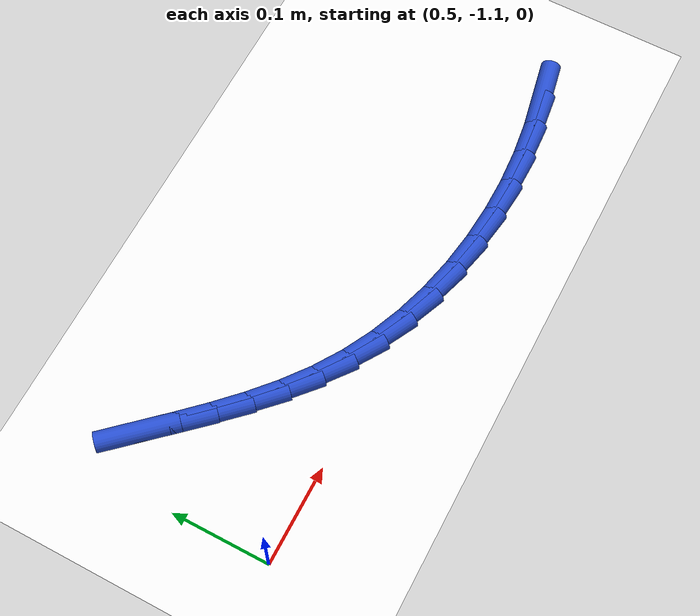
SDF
<sdf version="1.6">
 <world name="default">
  <model name="ground_plane">
   <static>1</static>
   <link name="link">
    <collision name="collision">
     <geometry><plane><normal>0 0 1</normal><size>100 100</size></plane></geometry>
     <surface><friction><ode><mu>100</mu><mu2>50</mu2></ode></friction></surface>
    </collision>
    <visual name="visual">
     <cast_shadows>0</cast_shadows>
     <geometry><plane><normal>0 0 1</normal><size>100 100</size></plane></geometry>
     <material>
      <script><uri>file://media/materials/scripts/gazebo.material</uri><name>Gazebo/WhiteGlow</name></script>
     </material>
    </visual>
   </link>
  </model>
  <model name="line">
   <link name="link_151">
    <pose>1.0423531299220818 -1.1138173822197828 0.01 0 1.57 0.1954948383418271</pose>
    <collision name="collision">
     <geometry><cylinder><radius>0.01</radius><length>0.08</length></cylinder></geometry>
    </collision>
    <visual name="visual">
     <material>
      <script><name>Gazebo/Blue</name><uri>file://media/materials/scripts/gazebo.material</uri></script>
     </material>
     <geometry><cylinder><radius>0.01</radius><length>0.08</length></cylinder></geometry>
    </visual>
   </link>
   <link name="link_152">
    <pose>1.0073821051336502 -1.120742484377155 0.01 0 1.57 0.12659611486323816</pose>
    <collision name="collision">
     <geometry><cylinder><radius>0.01</radius><length>0.08</length></cylinder></geometry>
    </collision>
    <visual name="visual">
     <material>
      <script><name>Gazebo/Blue</name><uri>file://media/materials/scripts/gazebo.material</uri></script>
     </material>
     <geometry><cylinder><radius>0.01</radius><length>0.08</length></cylinder></geometry>
    </visual>
   </link>
   <link name="link_153">
    <pose>0.9718709310468848 -1.1252622322494177 0.01 0 1.57 0.058309866842910854</pose>
    <collision name="collision">
     <geometry><cylinder><radius>0.01</radius><length>0.08</length></cylinder></geometry>
    </collision>
    <visual name="visual">
     <material>
      <script><name>Gazebo/Blue</name><uri>file://media/materials/scripts/gazebo.material</uri></script>
     </material>
     <geometry><cylinder><radius>0.01</radius><length>0.08</length></cylinder></geometry>
    </visual>
   </link>
   <link name="link_154">
    <pose>0.936086625044912 -1.1273511784048322 0.01 0 1.57 -0.010262245975007842</pose>
    <collision name="collision">
     <geometry><cylinder><radius>0.01</radius><length>0.08</length></cylinder></geometry>
    </collision>
    <visual name="visual">
     <material>
      <script><name>Gazebo/Blue</name><uri>file://media/materials/scripts/gazebo.material</uri></script>
     </material>
     <geometry><cylinder><radius>0.01</radius><length>0.08</length></cylinder></geometry>
    </visual>
   </link>
   <link name="link_155">
    <pose>0.9002962045108581 -1.1269838754116608 0.01 0 1.57 -0.08001562985274728</pose>
    <collision name="collision">
     <geometry><cylinder><radius>0.01</radius><length>0.08</length></cylinder></geometry>
    </collision>
    <visual name="visual">
     <material>
      <script><name>Gazebo/Blue</name><uri>file://media/materials/scripts/gazebo.material</uri></script>
     </material>
     <geometry><cylinder><radius>0.01</radius><length>0.08</length></cylinder></geometry>
    </visual>
   </link>
   <link name="link_156">
    <pose>0.864766686827849 -1.1241348758381646 0.01 0 1.57 -0.15184773571842655</pose>
    <collision name="collision">
     <geometry><cylinder><radius>0.01</radius><length>0.08</length></cylinder></geometry>
    </collision>
    <visual name="visual">
     <material>
      <script><name>Gazebo/Blue</name><uri>file://media/materials/scripts/gazebo.material</uri></script>
     </material>
     <geometry><cylinder><radius>0.01</radius><length>0.08</length></cylinder></geometry>
    </visual>
   </link>
   <link name="link_157">
    <pose>0.8297650893790106 -1.118778732252606 0.01 0 1.57 -0.2266570230985865</pose>
    <collision name="collision">
     <geometry><cylinder><radius>0.01</radius><length>0.08</length></cylinder></geometry>
    </collision>
    <visual name="visual">
     <material>
      <script><name>Gazebo/Blue</name><uri>file://media/materials/scripts/gazebo.material</uri></script>
     </material>
     <geometry><cylinder><radius>0.01</radius><length>0.08</length></cylinder></geometry>
    </visual>
   </link>
   <link name="link_158">
    <pose>0.7955584295474695 -1.110889997223246 0.01 0 1.57 -0.30533076583992985</pose>
    <collision name="collision">
     <geometry><cylinder><radius>0.01</radius><length>0.08</length></cylinder></geometry>
    </collision>
    <visual name="visual">
     <material>
      <script><name>Gazebo/Blue</name><uri>file://media/materials/scripts/gazebo.material</uri></script>
     </material>
     <geometry><cylinder><radius>0.01</radius><length>0.08</length></cylinder></geometry>
    </visual>
   </link>
   <link name="link_159">
    <pose>0.762413724716351 -1.100443223318347 0.01 0 1.57 -0.3887153472751042</pose>
    <collision name="collision">
     <geometry><cylinder><radius>0.01</radius><length>0.08</length></cylinder></geometry>
    </collision>
    <visual name="visual">
     <material>
      <script><name>Gazebo/Blue</name><uri>file://media/materials/scripts/gazebo.material</uri></script>
     </material>
     <geometry><cylinder><radius>0.01</radius><length>0.08</length></cylinder></geometry>
    </visual>
   </link>
   <link name="link_160">
    <pose>0.730597992268782 -1.0874129631061704 0.01 0 1.57 -0.47756184765653575</pose>
    <collision name="collision">
     <geometry><cylinder><radius>0.01</radius><length>0.08</length></cylinder></geometry>
    </collision>
    <visual name="visual">
     <material>
      <script><name>Gazebo/Blue</name><uri>file://media/materials/scripts/gazebo.material</uri></script>
     </material>
     <geometry><cylinder><radius>0.01</radius><length>0.08</length></cylinder></geometry>
    </visual>
   </link>
   <link name="link_161">
    <pose>0.700378249587888 -1.071773769154978 0.01 0 1.57 -0.571217837519205</pose>
    <collision name="collision">
     <geometry><cylinder><radius>0.01</radius><length>0.08</length></cylinder></geometry>
    </collision>
    <visual name="visual">
     <material>
      <script><name>Gazebo/Blue</name><uri>file://media/materials/scripts/gazebo.material</uri></script>
     </material>
     <geometry><cylinder><radius>0.01</radius><length>0.08</length></cylinder></geometry>
    </visual>
   </link>
   <link name="link_162">
    <pose>0.6719869539740981 -1.0535270221855486 0.01 0 1.57 -0.6566344429765998</pose>
    <collision name="collision">
     <geometry><cylinder><radius>0.01</radius><length>0.08</length></cylinder></geometry>
    </collision>
    <visual name="visual">
     <material>
      <script><name>Gazebo/Blue</name><uri>file://media/materials/scripts/gazebo.material</uri></script>
     </material>
     <geometry><cylinder><radius>0.01</radius><length>0.08</length></cylinder></geometry>
    </visual>
   </link>
   <link name="link_163">
    <pose>0.6452949617298415 -1.0329548049878574 0.01 0 1.57 -0.7250125015321331</pose>
    <collision name="collision">
     <geometry><cylinder><radius>0.01</radius><length>0.08</length></cylinder></geometry>
    </collision>
    <visual name="visual">
     <material>
      <script><name>Gazebo/Blue</name><uri>file://media/materials/scripts/gazebo.material</uri></script>
     </material>
     <geometry><cylinder><radius>0.01</radius><length>0.08</length></cylinder></geometry>
    </visual>
   </link>
   <link name="link_164">
    <pose>0.6199575921686349 -1.01050651647963 0.01 0 1.57 -0.7759059041150802</pose>
    <collision name="collision">
     <geometry><cylinder><radius>0.01</radius><length>0.08</length></cylinder></geometry>
    </collision>
    <visual name="visual">
     <material>
      <script><name>Gazebo/Blue</name><uri>file://media/materials/scripts/gazebo.material</uri></script>
     </material>
     <geometry><cylinder><radius>0.01</radius><length>0.08</length></cylinder></geometry>
    </visual>
   </link>
   <link name="link_165">
    <pose>0.5956272918803164 -0.9866337856041868 0.01 0 1.57 -0.8096071337958805</pose>
    <collision name="collision">
     <geometry><cylinder><radius>0.01</radius><length>0.08</length></cylinder></geometry>
    </collision>
    <visual name="visual">
     <material>
      <script><name>Gazebo/Blue</name><uri>file://media/materials/scripts/gazebo.material</uri></script>
     </material>
     <geometry><cylinder><radius>0.01</radius><length>0.08</length></cylinder></geometry>
    </visual>
   </link>
   <link name="link_166">
    <pose>0.5719565074547243 -0.9617882413048484 0.01 0 1.57 -0.8265833601431379</pose>
    <collision name="collision">
     <geometry><cylinder><radius>0.01</radius><length>0.08</length></cylinder></geometry>
    </collision>
    <visual name="visual">
     <material>
      <script><name>Gazebo/Blue</name><uri>file://media/materials/scripts/gazebo.material</uri></script>
     </material>
     <geometry><cylinder><radius>0.01</radius><length>0.08</length></cylinder></geometry>
    </visual>
   </link>
   <link name="link_167">
    <pose>0.5485976854816972 -0.9364215125249361 0.01 0 1.57 -0.8271891404541881</pose>
    <collision name="collision">
     <geometry><cylinder><radius>0.01</radius><length>0.08</length></cylinder></geometry>
    </collision>
    <visual name="visual">
     <material>
      <script><name>Gazebo/Blue</name><uri>file://media/materials/scripts/gazebo.material</uri></script>
     </material>
     <geometry><cylinder><radius>0.01</radius><length>0.08</length></cylinder></geometry>
    </visual>
   </link>
  </model>
 </world>
</sdf>
